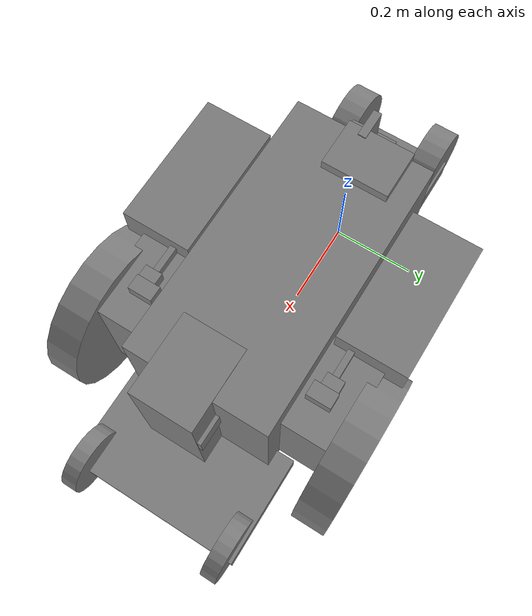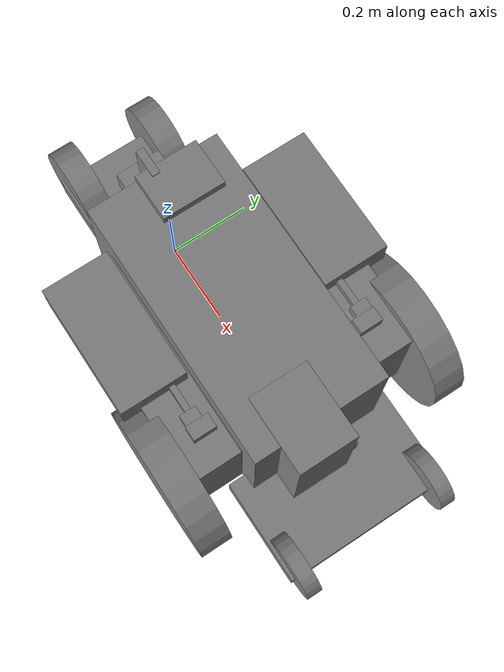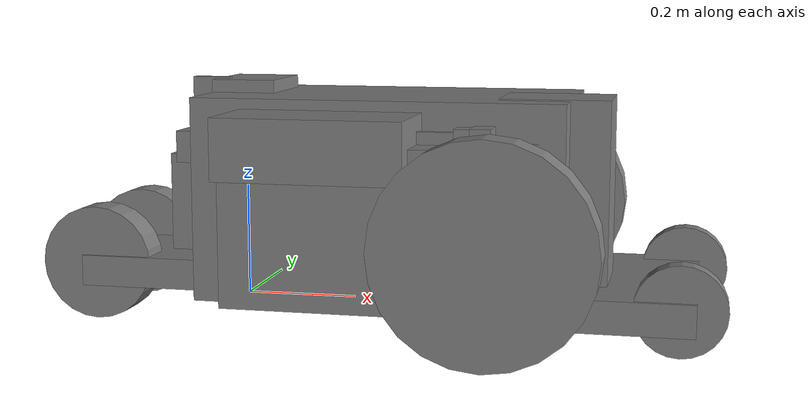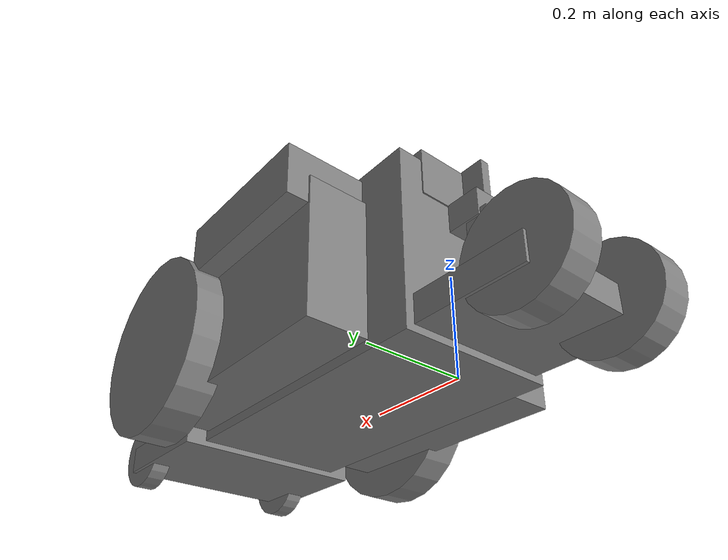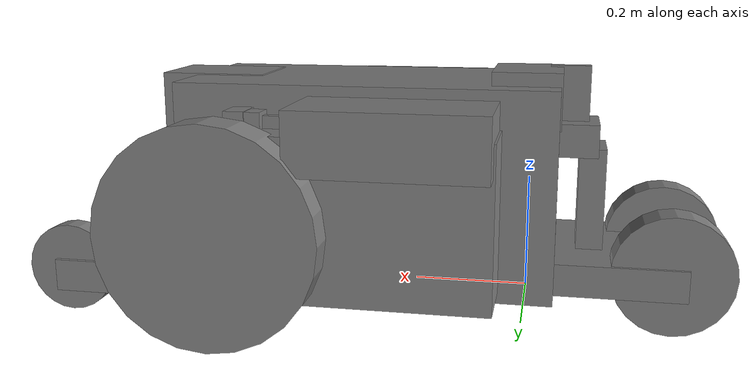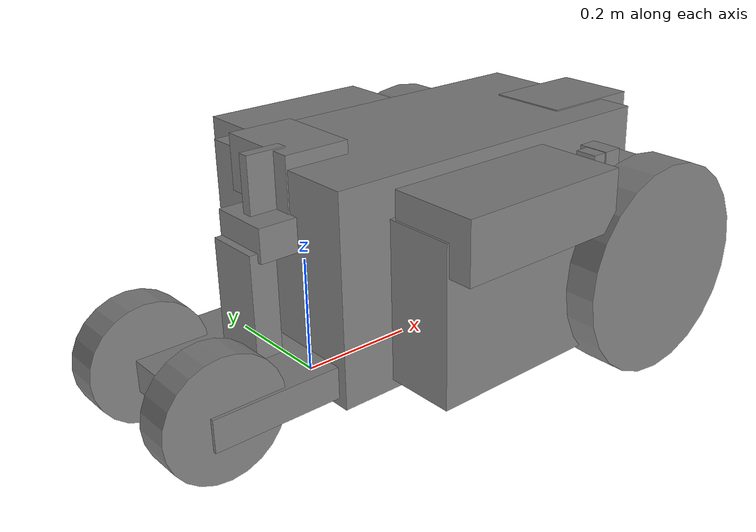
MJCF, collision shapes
<?xml version='1.0' encoding='utf-8'?>
<mujoco model="mebot">
  <compiler angle="degree" autolimits="true" />
  <option timestep="0.002" integrator="implicitfast" />
  <asset>
    <mesh name="mebot__drive_wheel_l__rubber" file="assets/mebot__drive_wheel_l__rubber.obj" />
    <material name="mat_rubber" rgba="0.0402 0.0402 0.0402 1.0000" />
    <mesh name="mebot__drive_wheel_l__wheel_hub" file="assets/mebot__drive_wheel_l__wheel_hub.obj" />
    <material name="mat_wheel_hub" rgba="0.2983 0.2983 0.2983 1.0000" />
    <mesh name="mebot__drive_wheel_r__rubber" file="assets/mebot__drive_wheel_r__rubber.obj" />
    <mesh name="mebot__drive_wheel_r__wheel_hub" file="assets/mebot__drive_wheel_r__wheel_hub.obj" />
    <mesh name="mebot__dw_main_plate_l__link_metal" file="assets/mebot__dw_main_plate_l__link_metal.obj" />
    <material name="mat_link_metal" rgba="0.0993 0.0993 0.0993 1.0000" />
    <mesh name="mebot__dw_main_plate_l__chassis_metal" file="assets/mebot__dw_main_plate_l__chassis_metal.obj" />
    <material name="mat_chassis_metal" rgba="0.1806 0.1806 0.1806 1.0000" />
    <mesh name="mebot__dw_main_plate_r__link_metal" file="assets/mebot__dw_main_plate_r__link_metal.obj" />
    <mesh name="mebot__dw_main_plate_r__chassis_metal" file="assets/mebot__dw_main_plate_r__chassis_metal.obj" />
    <mesh name="mebot__elevator_dampener_aux_link_l__link_metal" file="assets/mebot__elevator_dampener_aux_link_l__link_metal.obj" />
    <mesh name="mebot__elevator_dampener_aux_link_r__link_metal" file="assets/mebot__elevator_dampener_aux_link_r__link_metal.obj" />
    <mesh name="mebot__elevator_dampener_l__elevator_dampener" file="assets/mebot__elevator_dampener_l__elevator_dampener.obj" />
    <material name="mat_elevator_dampener" rgba="0.5413 0.4565 0.8000 1.0000" />
    <mesh name="mebot__elevator_dampener_link_l__link_metal" file="assets/mebot__elevator_dampener_link_l__link_metal.obj" />
    <mesh name="mebot__elevator_dampener_link_r__link_metal" file="assets/mebot__elevator_dampener_link_r__link_metal.obj" />
    <mesh name="mebot__elevator_dampener_r__elevator_dampener" file="assets/mebot__elevator_dampener_r__elevator_dampener.obj" />
    <mesh name="mebot__elevator_dampener_rod_l__elevator_dampener_rod" file="assets/mebot__elevator_dampener_rod_l__elevator_dampener_rod.obj" />
    <material name="mat_elevator_dampener_rod" rgba="0.3654 0.8000 0.4447 1.0000" />
    <mesh name="mebot__elevator_dampener_rod_r__elevator_dampener_rod" file="assets/mebot__elevator_dampener_rod_r__elevator_dampener_rod.obj" />
    <mesh name="mebot__front_caster_linkage__caster_arm_metal" file="assets/mebot__front_caster_linkage__caster_arm_metal.obj" />
    <material name="mat_caster_arm_metal" rgba="0.2912 0.2912 0.2912 1.0000" />
    <mesh name="mebot__front_caster_linkage_arm__caster_arm_metal" file="assets/mebot__front_caster_linkage_arm__caster_arm_metal.obj" />
    <mesh name="mebot__front_caster_linkage_aux__caster_arm_metal" file="assets/mebot__front_caster_linkage_aux__caster_arm_metal.obj" />
    <mesh name="mebot__front_caster_linkage_aux_arm__caster_arm_metal" file="assets/mebot__front_caster_linkage_aux_arm__caster_arm_metal.obj" />
    <mesh name="mebot__front_caster_motor__elevator_body" file="assets/mebot__front_caster_motor__elevator_body.obj" />
    <material name="mat_mebot__front_caster_motor__elevator_body" rgba="0.0714 0.1262 0.1364 1.0000">
      <layer texture="tex_mat_mebot__front_caster_motor__elevator_body_normal" role="normal" />
    </material>
    <texture name="tex_mat_mebot__front_caster_motor__elevator_body_normal" type="2d" file="assets/mebot__front_caster_motor__elevator_body_normal.png" />
    <mesh name="mebot__front_caster_motor_rod__elevator_rod" file="assets/mebot__front_caster_motor_rod__elevator_rod.obj" />
    <material name="mat_elevator_rod" rgba="0.8000 0.3559 0.3559 1.0000" />
    <mesh name="mebot__front_caster_swing_arm__caster_arm_metal" file="assets/mebot__front_caster_swing_arm__caster_arm_metal.obj" />
    <mesh name="mebot__front_caster_wheel_l__caster_rubber" file="assets/mebot__front_caster_wheel_l__caster_rubber.obj" />
    <material name="mat_caster_rubber" rgba="0.0548 0.0548 0.0548 1.0000" />
    <mesh name="mebot__front_caster_wheel_l__caster_metal" file="assets/mebot__front_caster_wheel_l__caster_metal.obj" />
    <material name="mat_caster_metal" rgba="0.8000 0.8000 0.8000 1.0000" />
    <mesh name="mebot__front_caster_wheel_l__caster_dampener_rod" file="assets/mebot__front_caster_wheel_l__caster_dampener_rod.obj" />
    <material name="mat_mebot__front_caster_wheel_l__caster_dampener_rod" rgba="0.7922 0.8196 0.9333 1.0000">
      <layer texture="tex_mat_mebot__front_caster_wheel_l__caster_dampener_rod_normal" role="normal" />
    </material>
    <texture name="tex_mat_mebot__front_caster_wheel_l__caster_dampener_rod_normal" type="2d" file="assets/mebot__front_caster_wheel_l__caster_dampener_rod_normal.png" />
    <mesh name="mebot__front_caster_wheel_r__caster_rubber" file="assets/mebot__front_caster_wheel_r__caster_rubber.obj" />
    <mesh name="mebot__front_caster_wheel_r__caster_metal" file="assets/mebot__front_caster_wheel_r__caster_metal.obj" />
    <mesh name="mebot__front_caster_wheel_r__caster_dampener_rod" file="assets/mebot__front_caster_wheel_r__caster_dampener_rod.obj" />
    <material name="mat_mebot__front_caster_wheel_r__caster_dampener_rod" rgba="0.7922 0.8196 0.9333 1.0000">
      <layer texture="tex_mat_mebot__front_caster_wheel_r__caster_dampener_rod_normal" role="normal" />
    </material>
    <texture name="tex_mat_mebot__front_caster_wheel_r__caster_dampener_rod_normal" type="2d" file="assets/mebot__front_caster_wheel_r__caster_dampener_rod_normal.png" />
    <mesh name="mebot__mebot__chassis_metal" file="assets/mebot__mebot__chassis_metal.obj" />
    <mesh name="mebot__motor_elevator_l__elevator_body" file="assets/mebot__motor_elevator_l__elevator_body.obj" />
    <material name="mat_mebot__motor_elevator_l__elevator_body" rgba="0.0714 0.1262 0.1364 1.0000">
      <layer texture="tex_mat_mebot__motor_elevator_l__elevator_body_normal" role="normal" />
    </material>
    <texture name="tex_mat_mebot__motor_elevator_l__elevator_body_normal" type="2d" file="assets/mebot__motor_elevator_l__elevator_body_normal.png" />
    <mesh name="mebot__motor_elevator_l__motor_brake" file="assets/mebot__motor_elevator_l__motor_brake.obj" />
    <material name="mat_motor_brake" rgba="0.1410 0.1410 0.1410 1.0000" />
    <mesh name="mebot__motor_elevator_pivot_l__link_metal" file="assets/mebot__motor_elevator_pivot_l__link_metal.obj" />
    <mesh name="mebot__motor_elevator_pivot_r__link_metal" file="assets/mebot__motor_elevator_pivot_r__link_metal.obj" />
    <mesh name="mebot__motor_elevator_r__elevator_body" file="assets/mebot__motor_elevator_r__elevator_body.obj" />
    <material name="mat_mebot__motor_elevator_r__elevator_body" rgba="0.0714 0.1262 0.1364 1.0000">
      <layer texture="tex_mat_mebot__motor_elevator_r__elevator_body_normal" role="normal" />
    </material>
    <texture name="tex_mat_mebot__motor_elevator_r__elevator_body_normal" type="2d" file="assets/mebot__motor_elevator_r__elevator_body_normal.png" />
    <mesh name="mebot__motor_elevator_r__motor_brake" file="assets/mebot__motor_elevator_r__motor_brake.obj" />
    <mesh name="mebot__motor_elevator_rod_l__elevator_rod" file="assets/mebot__motor_elevator_rod_l__elevator_rod.obj" />
    <mesh name="mebot__motor_elevator_rod_link_l__link_metal" file="assets/mebot__motor_elevator_rod_link_l__link_metal.obj" />
    <mesh name="mebot__motor_elevator_rod_link_r__link_metal" file="assets/mebot__motor_elevator_rod_link_r__link_metal.obj" />
    <mesh name="mebot__motor_elevator_rod_r__elevator_rod" file="assets/mebot__motor_elevator_rod_r__elevator_rod.obj" />
    <mesh name="mebot__motor_swing_arm_l__motor_body" file="assets/mebot__motor_swing_arm_l__motor_body.obj" />
    <material name="mat_motor_body" rgba="0.1579 0.4167 0.8000 1.0000" />
    <mesh name="mebot__motor_swing_arm_l__swing_arm_metal" file="assets/mebot__motor_swing_arm_l__swing_arm_metal.obj" />
    <material name="mat_swing_arm_metal" rgba="0.3415 0.8000 0.7783 1.0000" />
    <mesh name="mebot__motor_swing_arm_l__motor_gearbox" file="assets/mebot__motor_swing_arm_l__motor_gearbox.obj" />
    <material name="mat_motor_gearbox" rgba="0.1932 0.2198 0.8000 1.0000" />
    <mesh name="mebot__motor_swing_arm_l__motor_brake" file="assets/mebot__motor_swing_arm_l__motor_brake.obj" />
    <mesh name="mebot__motor_swing_arm_r__motor_body" file="assets/mebot__motor_swing_arm_r__motor_body.obj" />
    <mesh name="mebot__motor_swing_arm_r__swing_arm_metal" file="assets/mebot__motor_swing_arm_r__swing_arm_metal.obj" />
    <mesh name="mebot__motor_swing_arm_r__motor_gearbox" file="assets/mebot__motor_swing_arm_r__motor_gearbox.obj" />
    <mesh name="mebot__motor_swing_arm_r__motor_brake" file="assets/mebot__motor_swing_arm_r__motor_brake.obj" />
    <mesh name="mebot__rear_caster_aux_linkage__caster_arm_metal" file="assets/mebot__rear_caster_aux_linkage__caster_arm_metal.obj" />
    <mesh name="mebot__rear_caster_dampener__caster_dampener" file="assets/mebot__rear_caster_dampener__caster_dampener.obj" />
    <material name="mat_caster_dampener" rgba="0.0160 0.3968 1.0000 1.0000" />
    <mesh name="mebot__rear_caster_dampener_rod__caster_dampener_rod" file="assets/mebot__rear_caster_dampener_rod__caster_dampener_rod.obj" />
    <material name="mat_mebot__rear_caster_dampener_rod__caster_dampener_rod" rgba="0.0753 0.8101 0.9333 1.0000">
      <layer texture="tex_mat_mebot__rear_caster_dampener_rod__caster_dampener_rod_normal" role="normal" />
    </material>
    <texture name="tex_mat_mebot__rear_caster_dampener_rod__caster_dampener_rod_normal" type="2d" file="assets/mebot__rear_caster_dampener_rod__caster_dampener_rod_normal.png" />
    <mesh name="mebot__rear_caster_motor__elevator_body" file="assets/mebot__rear_caster_motor__elevator_body.obj" />
    <material name="mat_mebot__rear_caster_motor__elevator_body" rgba="0.0714 0.1262 0.1364 1.0000">
      <layer texture="tex_mat_mebot__rear_caster_motor__elevator_body_normal" role="normal" />
    </material>
    <texture name="tex_mat_mebot__rear_caster_motor__elevator_body_normal" type="2d" file="assets/mebot__rear_caster_motor__elevator_body_normal.png" />
    <mesh name="mebot__rear_caster_motor_dampener_pivot__caster_arm_metal" file="assets/mebot__rear_caster_motor_dampener_pivot__caster_arm_metal.obj" />
    <mesh name="mebot__rear_caster_motor_rod__elevator_rod" file="assets/mebot__rear_caster_motor_rod__elevator_rod.obj" />
    <mesh name="mebot__rear_caster_suspension_arm__caster_arm_metal" file="assets/mebot__rear_caster_suspension_arm__caster_arm_metal.obj" />
    <mesh name="mebot__rear_caster_swing_arm__caster_arm_metal" file="assets/mebot__rear_caster_swing_arm__caster_arm_metal.obj" />
    <mesh name="mebot__rear_caster_wheel_l__caster_rubber" file="assets/mebot__rear_caster_wheel_l__caster_rubber.obj" />
    <mesh name="mebot__rear_caster_wheel_l__caster_metal" file="assets/mebot__rear_caster_wheel_l__caster_metal.obj" />
    <mesh name="mebot__rear_caster_wheel_r__caster_rubber" file="assets/mebot__rear_caster_wheel_r__caster_rubber.obj" />
    <mesh name="mebot__rear_caster_wheel_r__caster_metal" file="assets/mebot__rear_caster_wheel_r__caster_metal.obj" />
  </asset>
  <worldbody>
    <body name="mebot" pos="0 0 0.05">
      <freejoint name="mebot_root" /><geom type="mesh" mesh="mebot__mebot__chassis_metal" material="mat_chassis_metal" contype="0" conaffinity="0" group="2" density="0" />
      <geom type="box" group="3" size="0.32275 0.16323 0.17800" pos="0.27305 0.00000 0.14488" contype="1" conaffinity="2" />
      <body name="dw_main_plate_l" pos="0.16682 0.16011 0.11342">
        <joint name="dw_main_plate_l" pos="0 0 0" axis="1.00000 0.00000 0.00000" type="slide" range="-0.1000 0.1000" stiffness="100000" damping="2000" />
        <geom type="mesh" mesh="mebot__dw_main_plate_l__link_metal" material="mat_link_metal" contype="0" conaffinity="0" group="2" density="0" />
        <geom type="mesh" mesh="mebot__dw_main_plate_l__chassis_metal" material="mat_chassis_metal" contype="0" conaffinity="0" group="2" density="0" />
        <geom type="box" group="3" size="0.25074 0.05498 0.09649" pos="0.13019 0.03910 0.03940" contype="1" conaffinity="2" />
        <body name="elevator_dampener_l" pos="0.07620 0.05130 0.05715">
          <joint name="elevator_dampener_l" pos="0 0 0" axis="0.00000 1.00000 0.00000" type="hinge" range="-30.0000 30.0000" armature="0.005" stiffness="20000" damping="500" />
          <geom type="mesh" mesh="mebot__elevator_dampener_l__elevator_dampener" material="mat_elevator_dampener" contype="0" conaffinity="0" group="2" density="0" />
          <geom type="box" group="3" size="0.06965 0.02741 0.03952" pos="0.06104 0.00445 0.02593" contype="1" conaffinity="2" />
          <body name="elevator_dampener_rod_l" pos="0.11522 0.00054 0.03967">
            <joint name="elevator_dampener_rod_l" pos="0 0 0" axis="0.94550 0.00450 0.32550" type="slide" range="-0.0300 0.0300" stiffness="20000" damping="500" />
            <geom type="mesh" mesh="mebot__elevator_dampener_rod_l__elevator_dampener_rod" material="mat_elevator_dampener_rod" contype="0" conaffinity="0" group="2" density="0" />
            <geom type="box" group="3" size="0.04539 0.01506 0.02607" pos="0.04041 -0.00087 0.01183" contype="1" conaffinity="2" />
          </body>
        </body>
        <body name="elevator_dampener_link_l" pos="0.26126 0.06209 0.07641">
          <joint name="elevator_dampener_link_l" pos="0 0 0" axis="0.00000 1.00000 0.00000" type="hinge" range="-30.0000 30.0000" armature="0.005" stiffness="20000" damping="500" />
          <geom type="mesh" mesh="mebot__elevator_dampener_link_l__link_metal" material="mat_link_metal" contype="0" conaffinity="0" group="2" density="0" />
          <geom type="box" group="3" size="0.01775 0.02758 0.04451" pos="0.00354 -0.01817 0.01245" contype="1" conaffinity="2" />
          <body name="elevator_dampener_aux_link_l" pos="0.01781 -0.00792 -0.01030">
            <joint name="elevator_dampener_aux_link_l" pos="0 0 0" axis="0.00000 1.00000 0.00000" type="hinge" range="-30.0000 30.0000" armature="0.005" stiffness="20000" damping="500" />
            <geom type="mesh" mesh="mebot__elevator_dampener_aux_link_l__link_metal" material="mat_link_metal" contype="0" conaffinity="0" group="2" density="0" />
            <geom type="box" group="3" size="0.03211 0.02758 0.02082" pos="0.00010 -0.01025 -0.00044" contype="1" conaffinity="2" />
          </body>
        </body>
        <body name="motor_elevator_pivot_l" pos="0.29885 0.04717 0.10969">
          <joint name="motor_elevator_pivot_l" pos="0 0 0" axis="0.00000 1.00000 0.00000" type="hinge" range="-30.0000 30.0000" armature="0.005" stiffness="1000" damping="200" />
          <geom type="mesh" mesh="mebot__motor_elevator_pivot_l__link_metal" material="mat_link_metal" contype="0" conaffinity="0" group="2" density="0" />
          <geom type="box" group="3" size="0.01724 0.02758 0.05616" pos="0.00014 -0.00325 0.00776" contype="1" conaffinity="2" />
          <body name="motor_elevator_rod_link_l" pos="0.00000 -0.01270 0.05080">
            <joint name="motor_elevator_rod_link_l" pos="0 0 0" axis="0.00000 1.00000 0.00000" type="hinge" range="-30.0000 30.0000" armature="0.005" damping="50" />
            <geom type="mesh" mesh="mebot__motor_elevator_rod_link_l__link_metal" material="mat_link_metal" contype="0" conaffinity="0" group="2" density="0" />
            <geom type="box" group="3" size="0.02782 0.01961 0.01393" pos="-0.01561 0.01502 -0.00168" contype="1" conaffinity="2" />
          </body>
        </body>
        <body name="motor_swing_arm_l" pos="0.00000 0.02189 0.00000">
          <joint name="motor_swing_arm_l" pos="0 0 0" axis="0.00000 1.00000 0.00000" type="hinge" range="-30.0000 30.0000" armature="0.005" damping="150" />
          <geom type="mesh" mesh="mebot__motor_swing_arm_l__motor_body" material="mat_motor_body" contype="0" conaffinity="0" group="2" density="0" />
          <geom type="mesh" mesh="mebot__motor_swing_arm_l__swing_arm_metal" material="mat_swing_arm_metal" contype="0" conaffinity="0" group="2" density="0" />
          <geom type="mesh" mesh="mebot__motor_swing_arm_l__motor_gearbox" material="mat_motor_gearbox" contype="0" conaffinity="0" group="2" density="0" />
          <geom type="mesh" mesh="mebot__motor_swing_arm_l__motor_brake" material="mat_motor_brake" contype="0" conaffinity="0" group="2" density="0" />
          <geom type="box" group="3" size="0.25491 0.06175 0.13600" pos="0.12885 0.04078 0.00870" contype="1" conaffinity="2" />
          <body name="drive_wheel_l" pos="0.31877 0.11955 -0.01380">
            <joint name="drive_wheel_l" pos="0 0 0" axis="0.00000 1.00000 0.00000" type="hinge" armature="0.005" damping="0.5" frictionloss="0.05" />
            <geom type="mesh" mesh="mebot__drive_wheel_l__rubber" material="mat_rubber" contype="0" conaffinity="0" group="2" density="0" />
            <geom type="mesh" mesh="mebot__drive_wheel_l__wheel_hub" material="mat_wheel_hub" contype="0" conaffinity="0" group="2" density="0" />
            <geom type="cylinder" group="3" size="0.18427 0.03809" pos="-0.00000 0.00000 0.00000" quat="-0.00000 0.00000 0.70711 0.70711" contype="1" conaffinity="2" />
          </body>
          <body name="motor_elevator_l" pos="-0.10372 0.02528 0.12668">
            <joint name="motor_elevator_l" pos="0 0 0" axis="0.00000 1.00000 0.00000" type="hinge" range="-30.0000 30.0000" armature="0.005" damping="500" />
            <geom type="mesh" mesh="mebot__motor_elevator_l__elevator_body" material="mat_mebot__motor_elevator_l__elevator_body" contype="0" conaffinity="0" group="2" density="0" />
            <geom type="mesh" mesh="mebot__motor_elevator_l__motor_brake" material="mat_motor_brake" contype="0" conaffinity="0" group="2" density="0" />
            <geom type="box" group="3" size="0.15728 0.07928 0.05155" pos="0.13868 0.04086 0.01437" contype="1" conaffinity="2" />
            <body name="motor_elevator_rod_l" pos="0.37865 0.00000 0.03180">
              <joint name="motor_elevator_rod_l" pos="0 0 0" axis="0.99650 0.00000 0.08370" type="slide" range="-0.0500 0.0500" damping="500" />
              <geom type="mesh" mesh="mebot__motor_elevator_rod_l__elevator_rod" material="mat_elevator_rod" contype="0" conaffinity="0" group="2" density="0" />
              <geom type="box" group="3" size="0.07637 0.00729 0.01309" pos="-0.07604 0.00000 -0.00589" contype="1" conaffinity="2" />
            </body>
          </body>
        </body>
      </body>
      <body name="dw_main_plate_r" pos="0.16682 -0.16523 0.11342">
        <joint name="dw_main_plate_r" pos="0 0 0" axis="1.00000 0.00000 0.00000" type="slide" range="-0.1000 0.1000" stiffness="100000" damping="2000" />
        <geom type="mesh" mesh="mebot__dw_main_plate_r__link_metal" material="mat_link_metal" contype="0" conaffinity="0" group="2" density="0" />
        <geom type="mesh" mesh="mebot__dw_main_plate_r__chassis_metal" material="mat_chassis_metal" contype="0" conaffinity="0" group="2" density="0" />
        <geom type="box" group="3" size="0.25074 0.05498 0.09649" pos="0.13019 -0.03910 0.03940" contype="1" conaffinity="2" />
        <body name="elevator_dampener_link_r" pos="0.26126 -0.06208 0.07641">
          <joint name="elevator_dampener_link_r" pos="0 0 0" axis="0.00000 1.00000 0.00000" type="hinge" range="-30.0000 30.0000" armature="0.005" stiffness="20000" damping="500" />
          <geom type="mesh" mesh="mebot__elevator_dampener_link_r__link_metal" material="mat_link_metal" contype="0" conaffinity="0" group="2" density="0" />
          <geom type="box" group="3" size="0.01775 0.02758 0.04451" pos="0.00354 0.01817 0.01245" contype="1" conaffinity="2" />
          <body name="elevator_dampener_aux_link_r" pos="0.01781 0.00792 -0.01030">
            <joint name="elevator_dampener_aux_link_r" pos="0 0 0" axis="0.00000 1.00000 0.00000" type="hinge" range="-30.0000 30.0000" armature="0.005" stiffness="20000" damping="500" />
            <geom type="mesh" mesh="mebot__elevator_dampener_aux_link_r__link_metal" material="mat_link_metal" contype="0" conaffinity="0" group="2" density="0" />
            <geom type="box" group="3" size="0.03211 0.02758 0.02082" pos="0.00010 0.01025 -0.00044" contype="1" conaffinity="2" />
          </body>
        </body>
        <body name="elevator_dampener_r" pos="0.07620 -0.04634 0.05715">
          <joint name="elevator_dampener_r" pos="0 0 0" axis="0.00000 1.00000 0.00000" type="hinge" range="-30.0000 30.0000" armature="0.005" stiffness="20000" damping="500" />
          <geom type="mesh" mesh="mebot__elevator_dampener_r__elevator_dampener" material="mat_elevator_dampener" contype="0" conaffinity="0" group="2" density="0" />
          <geom type="box" group="3" size="0.06965 0.02741 0.03952" pos="0.06104 -0.00445 0.02593" contype="1" conaffinity="2" />
          <body name="elevator_dampener_rod_r" pos="0.11522 0.00066 0.03967">
            <joint name="elevator_dampener_rod_r" pos="0 0 0" axis="0.94550 0.00540 0.32550" type="slide" range="-0.0300 0.0300" stiffness="20000" damping="500" />
            <geom type="mesh" mesh="mebot__elevator_dampener_rod_r__elevator_dampener_rod" material="mat_elevator_dampener_rod" contype="0" conaffinity="0" group="2" density="0" />
            <geom type="box" group="3" size="0.04539 0.01506 0.02607" pos="0.04041 -0.00087 0.01183" contype="1" conaffinity="2" />
          </body>
        </body>
        <body name="motor_elevator_pivot_r" pos="0.29885 -0.04716 0.10969">
          <joint name="motor_elevator_pivot_r" pos="0 0 0" axis="0.00000 1.00000 0.00000" type="hinge" range="-30.0000 30.0000" armature="0.005" stiffness="1000" damping="200" />
          <geom type="mesh" mesh="mebot__motor_elevator_pivot_r__link_metal" material="mat_link_metal" contype="0" conaffinity="0" group="2" density="0" />
          <geom type="box" group="3" size="0.01724 0.02758 0.05616" pos="0.00014 0.00325 0.00776" contype="1" conaffinity="2" />
          <body name="motor_elevator_rod_link_r" pos="0.00000 0.01270 0.05080">
            <joint name="motor_elevator_rod_link_r" pos="0 0 0" axis="0.00000 1.00000 0.00000" type="hinge" range="-30.0000 30.0000" armature="0.005" damping="50" />
            <geom type="mesh" mesh="mebot__motor_elevator_rod_link_r__link_metal" material="mat_link_metal" contype="0" conaffinity="0" group="2" density="0" />
            <geom type="box" group="3" size="0.02782 0.01961 0.01393" pos="-0.01561 -0.01502 -0.00168" contype="1" conaffinity="2" />
          </body>
        </body>
        <body name="motor_swing_arm_r" pos="0.00000 -0.02189 0.00000">
          <joint name="motor_swing_arm_r" pos="0 0 0" axis="0.00000 1.00000 0.00000" type="hinge" range="-30.0000 30.0000" armature="0.005" damping="150" />
          <geom type="mesh" mesh="mebot__motor_swing_arm_r__motor_body" material="mat_motor_body" contype="0" conaffinity="0" group="2" density="0" />
          <geom type="mesh" mesh="mebot__motor_swing_arm_r__swing_arm_metal" material="mat_swing_arm_metal" contype="0" conaffinity="0" group="2" density="0" />
          <geom type="mesh" mesh="mebot__motor_swing_arm_r__motor_gearbox" material="mat_motor_gearbox" contype="0" conaffinity="0" group="2" density="0" />
          <geom type="mesh" mesh="mebot__motor_swing_arm_r__motor_brake" material="mat_motor_brake" contype="0" conaffinity="0" group="2" density="0" />
          <geom type="box" group="3" size="0.25491 0.06175 0.13600" pos="0.12885 -0.04078 0.00870" contype="1" conaffinity="2" />
          <body name="drive_wheel_r" pos="0.31877 -0.11954 -0.01380">
            <joint name="drive_wheel_r" pos="0 0 0" axis="0.00000 1.00000 0.00000" type="hinge" armature="0.005" damping="0.5" frictionloss="0.05" />
            <geom type="mesh" mesh="mebot__drive_wheel_r__rubber" material="mat_rubber" contype="0" conaffinity="0" group="2" density="0" />
            <geom type="mesh" mesh="mebot__drive_wheel_r__wheel_hub" material="mat_wheel_hub" contype="0" conaffinity="0" group="2" density="0" />
            <geom type="cylinder" group="3" size="0.18427 0.03809" pos="-0.00000 0.00000 -0.00000" quat="-0.00000 0.00000 0.70711 0.70711" contype="1" conaffinity="2" />
          </body>
          <body name="motor_elevator_r" pos="-0.10372 -0.02527 0.12668">
            <joint name="motor_elevator_r" pos="0 0 0" axis="0.00000 1.00000 0.00000" type="hinge" range="-30.0000 30.0000" armature="0.005" damping="500" />
            <geom type="mesh" mesh="mebot__motor_elevator_r__elevator_body" material="mat_mebot__motor_elevator_r__elevator_body" contype="0" conaffinity="0" group="2" density="0" />
            <geom type="mesh" mesh="mebot__motor_elevator_r__motor_brake" material="mat_motor_brake" contype="0" conaffinity="0" group="2" density="0" />
            <geom type="box" group="3" size="0.15728 0.07928 0.05155" pos="0.13868 -0.04086 0.01437" contype="1" conaffinity="2" />
            <body name="motor_elevator_rod_r" pos="0.37865 0.00000 0.03180">
              <joint name="motor_elevator_rod_r" pos="0 0 0" axis="0.99650 -0.00000 0.08370" type="slide" range="-0.0500 0.0500" damping="500" />
              <geom type="mesh" mesh="mebot__motor_elevator_rod_r__elevator_rod" material="mat_elevator_rod" contype="0" conaffinity="0" group="2" density="0" />
              <geom type="box" group="3" size="0.07637 0.00729 0.01309" pos="-0.07604 -0.00000 -0.00589" contype="1" conaffinity="2" />
            </body>
          </body>
        </body>
      </body>
      <body name="front_caster_linkage" pos="0.55245 -0.03254 0.28194">
        <joint name="front_caster_linkage" pos="0 0 0" axis="0.00000 1.00000 0.00000" type="hinge" range="-20.0000 20.0000" armature="0.005" damping="5" />
        <geom type="mesh" mesh="mebot__front_caster_linkage__caster_arm_metal" material="mat_caster_arm_metal" contype="0" conaffinity="0" group="2" density="0" />
        <geom type="box" group="3" size="0.09380 0.07156 0.17759" pos="0.01730 0.00281 -0.13454" contype="1" conaffinity="2" />
        <body name="front_caster_linkage_arm" pos="0.03848 0.02974 0.02455">
          <joint name="front_caster_linkage_arm" pos="0 0 0" axis="0.00000 1.00000 0.00000" type="hinge" range="-30.0000 30.0000" armature="0.005" damping="5" />
          <geom type="mesh" mesh="mebot__front_caster_linkage_arm__caster_arm_metal" material="mat_caster_arm_metal" contype="0" conaffinity="0" group="2" density="0" />
          <geom type="box" group="3" size="0.03396 0.00953 0.06232" pos="0.02189 0.00317 -0.04977" contype="1" conaffinity="2" />
        </body>
      </body>
      <body name="front_caster_linkage_aux" pos="0.57785 0.00000 0.18349">
        <joint name="front_caster_linkage_aux" pos="0 0 0" axis="0.00000 1.00000 0.00000" type="hinge" range="-30.0000 30.0000" armature="0.005" damping="5" />
        <geom type="mesh" mesh="mebot__front_caster_linkage_aux__caster_arm_metal" material="mat_caster_arm_metal" contype="0" conaffinity="0" group="2" density="0" />
        <geom type="box" group="3" size="0.04869 0.04766 0.02621" pos="0.03591 0.00331 0.01347" contype="1" conaffinity="2" />
        <body name="front_caster_linkage_aux_arm" pos="0.07112 0.00159 0.00000">
          <joint name="front_caster_linkage_aux_arm" pos="0 0 0" axis="0.00000 1.00000 0.00000" type="hinge" range="-30.0000 30.0000" armature="0.005" damping="5" />
          <geom type="mesh" mesh="mebot__front_caster_linkage_aux_arm__caster_arm_metal" material="mat_caster_arm_metal" contype="0" conaffinity="0" group="2" density="0" />
          <geom type="box" group="3" size="0.01268 0.03343 0.11471" pos="0.00000 -0.00159 -0.09962" contype="1" conaffinity="2" />
        </body>
      </body>
      <body name="front_caster_motor" pos="0.40677 -0.06509 0.03439">
        <joint name="front_caster_motor" pos="0 0 0" axis="0.00000 1.00000 0.00000" type="hinge" range="-30.0000 30.0000" armature="0.005" damping="50" />
        <geom type="mesh" mesh="mebot__front_caster_motor__elevator_body" material="mat_mebot__front_caster_motor__elevator_body" contype="0" conaffinity="0" group="2" density="0" />
        <geom type="box" group="3" size="0.08209 0.07908 0.14568" pos="0.03738 0.04103 0.09368" contype="1" conaffinity="2" />
        <body name="front_caster_motor_rod" pos="0.08552 0.00000 0.21774">
          <joint name="front_caster_motor_rod" pos="0 0 0" axis="0.36560 -0.00000 0.93080" type="slide" range="-0.0800 0.0800" damping="500" />
          <geom type="mesh" mesh="mebot__front_caster_motor_rod__elevator_rod" material="mat_elevator_rod" contype="0" conaffinity="0" group="2" density="0" />
          <geom type="box" group="3" size="0.03406 0.00729 0.07333" pos="-0.02746 0.00000 -0.07093" contype="1" conaffinity="2" />
        </body>
      </body>
      <body name="front_caster_swing_arm" pos="0.57785 0.00000 -0.01651">
        <joint name="front_caster_swing_arm" pos="0 0 0" axis="0.00000 1.00000 0.00000" type="hinge" range="-30.0000 30.0000" armature="0.005" stiffness="200" damping="200" />
        <geom type="mesh" mesh="mebot__front_caster_swing_arm__caster_arm_metal" material="mat_caster_arm_metal" contype="0" conaffinity="0" group="2" density="0" />
        <geom type="box" group="3" size="0.12706 0.20638 0.02790" pos="0.10795 0.00000 -0.00028" contype="1" conaffinity="2" />
        <body name="front_caster_wheel_l" pos="0.20955 0.17939 0.01270">
          <joint name="front_caster_wheel_l" pos="0 0 0" axis="0.00000 1.00000 0.00000" type="hinge" armature="0.005" damping="0.3" frictionloss="0.02" />
          <geom type="mesh" mesh="mebot__front_caster_wheel_l__caster_rubber" material="mat_caster_rubber" contype="0" conaffinity="0" group="2" density="0" />
          <geom type="mesh" mesh="mebot__front_caster_wheel_l__caster_metal" material="mat_caster_metal" contype="0" conaffinity="0" group="2" density="0" />
          <geom type="mesh" mesh="mebot__front_caster_wheel_l__caster_dampener_rod" material="mat_mebot__front_caster_wheel_l__caster_dampener_rod" contype="0" conaffinity="0" group="2" density="0" />
          <geom type="cylinder" group="3" size="0.07659 0.01886" pos="-0.00000 0.00019 -0.00000" quat="-0.00000 0.00000 0.70711 0.70711" contype="1" conaffinity="2" friction="0.12 0.002 0.0002" priority="1" />
        </body>
        <body name="front_caster_wheel_r" pos="0.20955 -0.17939 0.01270">
          <joint name="front_caster_wheel_r" pos="0 0 0" axis="0.00000 1.00000 0.00000" type="hinge" armature="0.005" damping="0.3" frictionloss="0.02" />
          <geom type="mesh" mesh="mebot__front_caster_wheel_r__caster_rubber" material="mat_caster_rubber" contype="0" conaffinity="0" group="2" density="0" />
          <geom type="mesh" mesh="mebot__front_caster_wheel_r__caster_metal" material="mat_caster_metal" contype="0" conaffinity="0" group="2" density="0" />
          <geom type="mesh" mesh="mebot__front_caster_wheel_r__caster_dampener_rod" material="mat_mebot__front_caster_wheel_r__caster_dampener_rod" contype="0" conaffinity="0" group="2" density="0" />
          <geom type="cylinder" group="3" size="0.07659 0.01886" pos="-0.00000 -0.00019 -0.00000" quat="-0.00000 0.00000 0.70711 0.70711" contype="1" conaffinity="2" friction="0.12 0.002 0.0002" priority="1" />
        </body>
      </body>
      <body name="rear_caster_motor" pos="0.08563 0.06520 0.04017">
        <joint name="rear_caster_motor" pos="0 0 0" axis="0.00000 1.00000 0.00000" type="hinge" range="-30.0000 30.0000" armature="0.005" damping="50" />
        <geom type="mesh" mesh="mebot__rear_caster_motor__elevator_body" material="mat_mebot__rear_caster_motor__elevator_body" contype="0" conaffinity="0" group="2" density="0" />
        <geom type="box" group="3" size="0.05439 0.07908 0.15251" pos="-0.01305 -0.04103 0.09846" contype="1" conaffinity="2" />
        <body name="rear_caster_motor_rod" pos="-0.03390 0.00000 0.23146">
          <joint name="rear_caster_motor_rod" pos="0 0 0" axis="-0.14490 -0.00000 0.98940" type="slide" range="-0.0800 0.0800" damping="500" />
          <geom type="mesh" mesh="mebot__rear_caster_motor_rod__elevator_rod" material="mat_elevator_rod" contype="0" conaffinity="0" group="2" density="0" />
          <geom type="box" group="3" size="0.01769 0.00729 0.07626" pos="0.01057 0.00000 -0.07548" contype="1" conaffinity="2" />
        </body>
      </body>
      <body name="rear_caster_motor_dampener_pivot" pos="-0.03175 0.00256 0.20889">
        <joint name="rear_caster_motor_dampener_pivot" pos="0 0 0" axis="0.00000 1.00000 0.00000" type="hinge" range="-30.0000 30.0000" armature="0.005" stiffness="20" damping="50" />
        <geom type="mesh" mesh="mebot__rear_caster_motor_dampener_pivot__caster_arm_metal" material="mat_caster_arm_metal" contype="0" conaffinity="0" group="2" density="0" />
        <geom type="box" group="3" size="0.04874 0.05425 0.02840" pos="-0.03586 -0.00587 0.01565" contype="1" conaffinity="2" />
        <body name="rear_caster_dampener" pos="-0.07112 -0.00248 0.00000">
          <joint name="rear_caster_dampener" pos="0 0 0" axis="0.00000 1.00000 0.00000" type="hinge" range="-30.0000 30.0000" armature="0.005" stiffness="20000" damping="500" />
          <geom type="mesh" mesh="mebot__rear_caster_dampener__caster_dampener" material="mat_caster_dampener" contype="0" conaffinity="0" group="2" density="0" />
          <geom type="box" group="3" size="0.02294 0.04829 0.10207" pos="-0.00440 -0.00123 -0.10022" contype="1" conaffinity="2" />
          <body name="rear_caster_dampener_rod" pos="0.00000 0.00000 -0.12100">
            <joint name="rear_caster_dampener_rod" pos="0 0 0" axis="-0.00000 0.00000 -1.00000" type="slide" range="-0.0500 0.0500" stiffness="20000" damping="500" />
            <geom type="mesh" mesh="mebot__rear_caster_dampener_rod__caster_dampener_rod" material="mat_mebot__rear_caster_dampener_rod__caster_dampener_rod" contype="0" conaffinity="0" group="2" density="0" />
            <geom type="box" group="3" size="0.01506 0.04164 0.04503" pos="0.00018 -0.00013 -0.04503" contype="1" conaffinity="2" />
          </body>
        </body>
      </body>
      <body name="rear_caster_suspension_arm" pos="-0.00635 0.03266 0.30734">
        <joint name="rear_caster_suspension_arm" pos="0 0 0" axis="0.00000 1.00000 0.00000" type="hinge" range="-30.0000 30.0000" armature="0.005" damping="5" />
        <geom type="mesh" mesh="mebot__rear_caster_suspension_arm__caster_arm_metal" material="mat_caster_arm_metal" contype="0" conaffinity="0" group="2" density="0" />
        <geom type="box" group="3" size="0.05774 0.07656 0.04757" pos="0.01195 0.00338 -0.00930" contype="1" conaffinity="2" />
        <body name="rear_caster_aux_linkage" pos="-0.03586 -0.02937 0.02836">
          <joint name="rear_caster_aux_linkage" pos="0 0 0" axis="0.00000 1.00000 0.00000" type="hinge" range="-30.0000 30.0000" armature="0.005" damping="5" />
          <geom type="mesh" mesh="mebot__rear_caster_aux_linkage__caster_arm_metal" material="mat_caster_arm_metal" contype="0" conaffinity="0" group="2" density="0" />
          <geom type="box" group="3" size="0.03432 0.00953 0.06214" pos="-0.02229 -0.00318 -0.04963" contype="1" conaffinity="2" />
        </body>
      </body>
      <body name="rear_caster_swing_arm" pos="-0.03175 0.00011 0.00889">
        <joint name="rear_caster_swing_arm" pos="0 0 0" axis="0.00000 1.00000 0.00000" type="hinge" range="-30.0000 30.0000" armature="0.005" stiffness="200" damping="200" />
        <geom type="mesh" mesh="mebot__rear_caster_swing_arm__caster_arm_metal" material="mat_caster_arm_metal" contype="0" conaffinity="0" group="2" density="0" />
        <geom type="box" group="3" size="0.12702 0.14605 0.02719" pos="-0.10792 0.00000 -0.00094" contype="1" conaffinity="2" />
        <body name="rear_caster_wheel_l" pos="-0.20955 0.08427 0.01270">
          <joint name="rear_caster_wheel_l" pos="0 0 0" axis="0.00000 1.00000 0.00000" type="hinge" armature="0.005" damping="0.3" frictionloss="0.02" />
          <geom type="mesh" mesh="mebot__rear_caster_wheel_l__caster_rubber" material="mat_caster_rubber" contype="0" conaffinity="0" group="2" density="0" />
          <geom type="mesh" mesh="mebot__rear_caster_wheel_l__caster_metal" material="mat_caster_metal" contype="0" conaffinity="0" group="2" density="0" />
          <geom type="cylinder" group="3" size="0.10107 0.03095" pos="-0.00000 0.02468 -0.00000" quat="-0.00000 0.00000 0.70711 0.70711" contype="1" conaffinity="2" friction="0.12 0.002 0.0002" priority="1" />
        </body>
        <body name="rear_caster_wheel_r" pos="-0.20955 -0.08426 0.01270">
          <joint name="rear_caster_wheel_r" pos="0 0 0" axis="0.00000 1.00000 0.00000" type="hinge" armature="0.005" damping="0.3" frictionloss="0.02" />
          <geom type="mesh" mesh="mebot__rear_caster_wheel_r__caster_rubber" material="mat_caster_rubber" contype="0" conaffinity="0" group="2" density="0" />
          <geom type="mesh" mesh="mebot__rear_caster_wheel_r__caster_metal" material="mat_caster_metal" contype="0" conaffinity="0" group="2" density="0" />
          <geom type="cylinder" group="3" size="0.10107 0.03095" pos="-0.00000 -0.02469 0.00000" quat="-0.00000 0.00000 0.70711 0.70711" contype="1" conaffinity="2" friction="0.12 0.002 0.0002" priority="1" />
        </body>
      </body>
    </body>
  </worldbody>
  <actuator>
    <motor name="drive_wheel_l" joint="drive_wheel_l" ctrlrange="-1 1" gear="60.0" />
    <motor name="drive_wheel_r" joint="drive_wheel_r" ctrlrange="-1 1" gear="60.0" />
    <position name="motor_elevator_rod_l" joint="motor_elevator_rod_l" kp="600000" dampratio="1" ctrlrange="-0.08 0.08" forcerange="-20000 20000" /><position name="motor_elevator_rod_r" joint="motor_elevator_rod_r" kp="600000" dampratio="1" ctrlrange="-0.08 0.08" forcerange="-20000 20000" /><position name="front_caster_motor_rod" joint="front_caster_motor_rod" kp="600000" dampratio="1" ctrlrange="-0.08 0.08" forcerange="-20000 20000" /><position name="rear_caster_motor_rod" joint="rear_caster_motor_rod" kp="600000" dampratio="1" ctrlrange="-0.08 0.08" forcerange="-20000 20000" /></actuator>
  <equality>
    <connect body1="elevator_dampener_rod_l" body2="elevator_dampener_link_l" anchor="0.07287 0.00470 0.02985" solref="0.005 1" solimp="0.95 0.99" />
    <connect body1="elevator_dampener_aux_link_l" body2="motor_elevator_pivot_l" anchor="0.01869 -0.01397 0.00799" solref="0.005 1" solimp="0.95 0.99" />
    <connect body1="motor_elevator_rod_l" body2="motor_elevator_rod_link_l" anchor="-0.00800 -0.00257 0.00016" solref="0.005 1" solimp="0.95 0.99" />
    <connect body1="elevator_dampener_aux_link_r" body2="motor_elevator_pivot_r" anchor="0.01869 0.01397 0.00799" solref="0.005 1" solimp="0.95 0.99" />
    <connect body1="elevator_dampener_rod_r" body2="elevator_dampener_link_r" anchor="0.07695 0.00113 0.02734" solref="0.005 1" solimp="0.95 0.99" />
    <connect body1="motor_elevator_rod_r" body2="motor_elevator_rod_link_r" anchor="-0.00800 0.00256 0.00016" solref="0.005 1" solimp="0.95 0.99" />
    <connect body1="front_caster_linkage_arm" body2="front_caster_linkage_aux" anchor="0.04376 0.00136 -0.09761" solref="0.005 1" solimp="0.95 0.99" />
    <connect body1="front_caster_linkage_aux_arm" body2="front_caster_swing_arm" anchor="0.00023 0.02777 -0.20209" solref="0.005 1" solimp="0.95 0.99" />
    <connect body1="front_caster_motor_rod" body2="front_caster_linkage" anchor="-0.00337 -0.00096 -0.01162" solref="0.005 1" solimp="0.95 0.99" />
    <connect body1="rear_caster_motor_rod" body2="rear_caster_suspension_arm" anchor="0.00074 0.00087 -0.01128" solref="0.005 1" solimp="0.95 0.99" />
    <connect body1="rear_caster_dampener_rod" body2="rear_caster_swing_arm" anchor="0.00123 0.03018 -0.07950" solref="0.005 1" solimp="0.95 0.99" />
    <connect body1="rear_caster_aux_linkage" body2="rear_caster_motor_dampener_pivot" anchor="-0.04488 -0.00083 -0.10228" solref="0.005 1" solimp="0.95 0.99" />
  </equality>
</mujoco>
